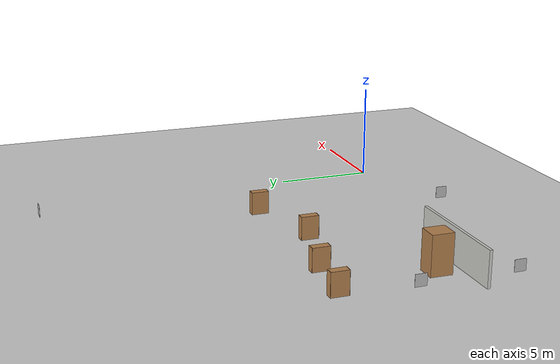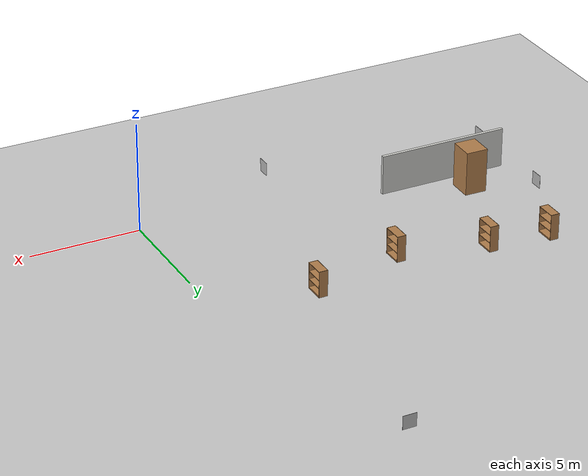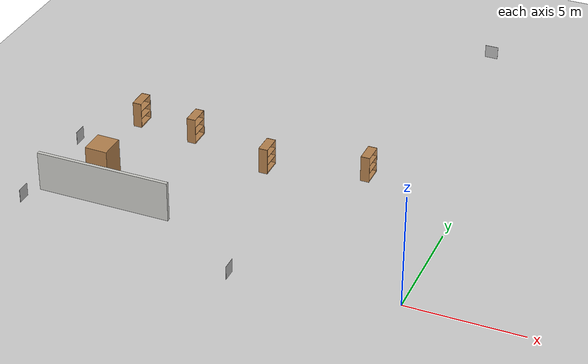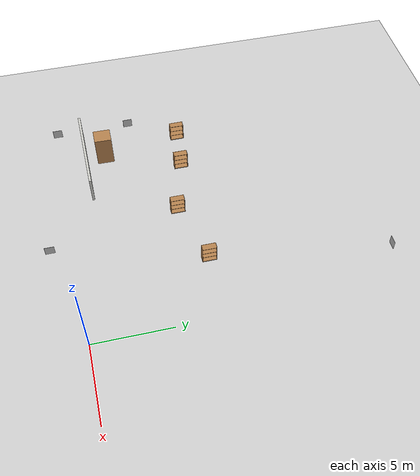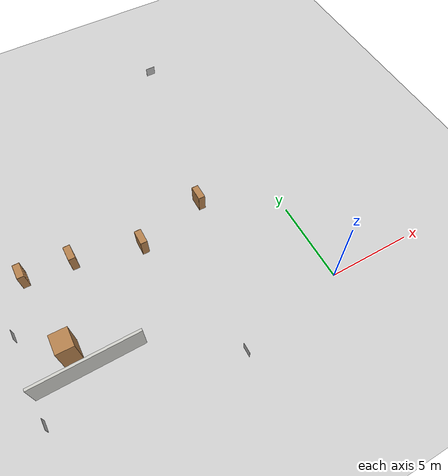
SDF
<sdf version="1.7">
 <world name="default">
  <model name="ground_plane">
   <static>1</static>
   <link name="link">
    <collision name="collision">
     <geometry><plane><normal>0 0 1</normal><size>25 25</size></plane></geometry>
     <surface><friction><ode><mu>100</mu><mu2>50</mu2></ode></friction></surface>
    </collision>
    <visual name="visual">
     <cast_shadows>0</cast_shadows>
     <geometry><plane><normal>0 0 1</normal><size>25 25</size></plane></geometry>
     <material>
      <script><uri>file://media/materials/scripts/gazebo.material</uri><name>Gazebo/Grey</name></script>
     </material>
    </visual>
   </link>
  </model>
  <model name="static_apriltag_1">
   <link name="link">
    <pose>0 0 0 0 1.57 0</pose>
    <inertial>
     <mass>0.39</mass>
     <inertia><ixx>0.00058</ixx><ixy>0</ixy><ixz>0</ixz><iyy>0.00058</iyy><iyz>0</iyz><izz>0.00019</izz></inertia>
    </inertial>
    <collision name="collision"><geometry><box><size>0.6 0.6 0.01</size></box></geometry></collision>
    <visual name="visual">
     <geometry><box><size>0.6 0.6 0.01</size></box></geometry>
     <material>
      <script>
       <uri>model://apriltag/materials/scripts</uri>
       <uri>model://apriltag/materials/textures</uri>
       <name>apriltag/Diffuse1</name>
      </script>
     </material>
    </visual>
    <gravity>0</gravity>
   </link>
   <pose>-2.37496 19.0629 0.800899 0.000796 0.000796 1.57</pose>
   <static>1</static>
   <pose>1.36256 0.459264 0 0 -0 0</pose>
  </model>
  <model name="static_apriltag_2">
   <link name="link">
    <pose>0 0 0 0 1.57 0</pose>
    <inertial>
     <mass>0.39</mass>
     <inertia><ixx>0.00058</ixx><ixy>0</ixy><ixz>0</ixz><iyy>0.00058</iyy><iyz>0</iyz><izz>0.00019</izz></inertia>
    </inertial>
    <collision name="collision"><geometry><box><size>0.6 0.6 0.01</size></box></geometry></collision>
    <visual name="visual">
     <geometry><box><size>0.6 0.6 0.01</size></box></geometry>
     <material>
      <script>
       <uri>model://apriltag/materials/scripts</uri>
       <uri>model://apriltag/materials/textures</uri>
       <name>apriltag/Diffuse2</name>
      </script>
     </material>
    </visual>
    <gravity>0</gravity>
   </link>
   <pose>-16.5929 4.92565 0.800534 -0.000796 0.000796 -1e-06</pose>
   <static>1</static>
   <pose>0.80811 0.829943 0 0 -0 0</pose>
  </model>
  <model name="static_apriltag_3">
   <link name="link">
    <pose>0 0 0 -1.57 1.57 -0</pose>
    <inertial>
     <mass>0.39</mass>
     <inertia><ixx>0.00058</ixx><ixy>0</ixy><ixz>0</ixz><iyy>0.00058</iyy><iyz>0</iyz><izz>0.00019</izz></inertia>
    </inertial>
    <collision name="collision"><geometry><box><size>0.6 0.6 0.01</size></box></geometry></collision>
    <visual name="visual">
     <geometry><box><size>0.6 0.6 0.01</size></box></geometry>
     <material>
      <script>
       <uri>model://apriltag/materials/scripts</uri>
       <uri>model://apriltag/materials/textures</uri>
       <name>apriltag/Diffuse3</name>
      </script>
     </material>
    </visual>
    <gravity>0</gravity>
   </link>
   <pose>-6.59048 -1.46342 0.801382 1e-06 0.001593 1.57319</pose>
   <static>1</static>
   <pose>3.65849 3.02317 0 0 -0 0</pose>
  </model>
  <model name="static_apriltag_7">
   <link name="link">
    <pose>0 0 0 0 1.57 0</pose>
    <inertial>
     <mass>0.39</mass>
     <inertia><ixx>0.00058</ixx><ixy>0</ixy><ixz>0</ixz><iyy>0.00058</iyy><iyz>0</iyz><izz>0.00019</izz></inertia>
    </inertial>
    <collision name="collision"><geometry><box><size>0.6 0.6 0.01</size></box></geometry></collision>
    <visual name="visual">
     <geometry><box><size>0.6 0.6 0.01</size></box></geometry>
     <material>
      <script>
       <uri>model://apriltag/materials/scripts</uri>
       <uri>model://apriltag/materials/textures</uri>
       <name>apriltag/Diffuse7</name>
      </script>
     </material>
    </visual>
    <gravity>0</gravity>
   </link>
   <pose>-16.5926 0.054368 0.800661 -0.000796 0.000796 -1e-06</pose>
   <static>1</static>
   <pose>3.12393 4.47604 0 0 -0 0</pose>
  </model>
  <model name="0810_MAP2_elment2">
   <link name="Wall_0">
    <inertial>
     <mass>1</mass>
     <inertia><ixx>1</ixx><ixy>0</ixy><ixz>0</ixz><iyy>1</iyy><iyz>0</iyz><izz>1</izz></inertia>
    </inertial>
    <visual name="Wall_0_Visual_3">
     <pose>-1 0 0.9 0 -0 0</pose>
     <geometry><box><size>6 0.15 2</size></box></geometry>
     <material>
      <script><uri>file://media/materials/scripts/gazebo.material</uri><name>Gazebo/CeilingTiled</name></script>
      <ambient>1 0.765 0.306 1</ambient>
      <shader type="pixel"><normal_map>__default__</normal_map></shader>
      <diffuse>1 1 1 1</diffuse>
      <specular>0 0 0 1</specular>
      <emissive>0 0 0 1</emissive>
     </material>
     <meta><layer>0</layer></meta>
    </visual>
    <collision name="Wall_0_Collision_3">
     <pose>-1 0 0.9 0 -0 0</pose>
     <geometry><box><size>6 0.15 2</size></box></geometry>
     <surface>
      <friction>
       <ode><mu>1</mu><mu2>1</mu2><fdir1>0 0 0</fdir1><slip1>0</slip1><slip2>0</slip2></ode>
       <torsional>
        <coefficient>1</coefficient>
        <patch_radius>0</patch_radius>
        <surface_radius>0</surface_radius>
        <use_patch_radius>1</use_patch_radius>
        <ode><slip>0</slip></ode>
       </torsional>
      </friction>
      <bounce><restitution_coefficient>0</restitution_coefficient><threshold>1e+06</threshold></bounce>
      <contact>
       <collide_without_contact>0</collide_without_contact>
       <collide_without_contact_bitmask>1</collide_without_contact_bitmask>
       <collide_bitmask>1</collide_bitmask>
       <ode>
        <soft_cfm>0</soft_cfm>
        <soft_erp>0.2</soft_erp>
        <kp>1e+13</kp>
        <kd>1</kd>
        <max_vel>0.01</max_vel>
        <min_depth>0</min_depth>
       </ode>
       <bullet>
        <split_impulse>1</split_impulse>
        <split_impulse_penetration_threshold>-0.01</split_impulse_penetration_threshold>
        <soft_cfm>0</soft_cfm>
        <soft_erp>0.2</soft_erp>
        <kp>1e+13</kp>
        <kd>1</kd>
       </bullet>
      </contact>
     </surface>
    </collision>
   </link>
   <static>1</static>
   <pose>-12.7621 1.68189 -0.102799 0 -0 0</pose>
  </model>
  <model name="bookshelf_clone_0_clone_clone">
   <static>1</static>
   <link name="link">
    <inertial><mass>1</mass></inertial>
    <collision name="back">
     <pose>0 0.005 0.6 0 -0 0</pose>
     <geometry><box><size>0.9 0.01 1.2</size></box></geometry>
    </collision>
    <visual name="visual1">
     <pose>0 0.005 0.6 0 -0 0</pose>
     <geometry><box><size>0.9 0.01 1.2</size></box></geometry>
     <material>
      <script><uri>file://media/materials/scripts/gazebo.material</uri><name>Gazebo/Wood</name></script>
     </material>
    </visual>
    <collision name="left_side">
     <pose>0.45 -0.195 0.6 0 -0 0</pose>
     <geometry><box><size>0.02 0.4 1.2</size></box></geometry>
    </collision>
    <visual name="visual2">
     <pose>0.45 -0.195 0.6 0 -0 0</pose>
     <geometry><box><size>0.02 0.4 1.2</size></box></geometry>
     <material>
      <script><uri>file://media/materials/scripts/gazebo.material</uri><name>Gazebo/Wood</name></script>
     </material>
    </visual>
    <collision name="right_side">
     <pose>-0.45 -0.195 0.6 0 -0 0</pose>
     <geometry><box><size>0.02 0.4 1.2</size></box></geometry>
    </collision>
    <visual name="visual3">
     <pose>-0.45 -0.195 0.6 0 -0 0</pose>
     <geometry><box><size>0.02 0.4 1.2</size></box></geometry>
     <material>
      <script><uri>file://media/materials/scripts/gazebo.material</uri><name>Gazebo/Wood</name></script>
     </material>
    </visual>
    <collision name="bottom">
     <pose>0 -0.195 0.03 0 -0 0</pose>
     <geometry><box><size>0.88 0.4 0.06</size></box></geometry>
    </collision>
    <visual name="visual4">
     <pose>0 -0.195 0.03 0 -0 0</pose>
     <geometry><box><size>0.88 0.4 0.06</size></box></geometry>
     <material>
      <script><uri>file://media/materials/scripts/gazebo.material</uri><name>Gazebo/Wood</name></script>
     </material>
    </visual>
    <collision name="top">
     <pose>0 -0.195 1.19 0 -0 0</pose>
     <geometry><box><size>0.88 0.4 0.02</size></box></geometry>
    </collision>
    <visual name="visual5">
     <pose>0 -0.195 1.19 0 -0 0</pose>
     <geometry><box><size>0.88 0.4 0.02</size></box></geometry>
     <material>
      <script><uri>file://media/materials/scripts/gazebo.material</uri><name>Gazebo/Wood</name></script>
     </material>
    </visual>
    <collision name="low_shelf">
     <pose>0 -0.195 0.43 0 -0 0</pose>
     <geometry><box><size>0.88 0.4 0.02</size></box></geometry>
    </collision>
    <visual name="visual6">
     <pose>0 -0.195 0.43 0 -0 0</pose>
     <geometry><box><size>0.88 0.4 0.02</size></box></geometry>
     <material>
      <script><uri>file://media/materials/scripts/gazebo.material</uri><name>Gazebo/Wood</name></script>
     </material>
    </visual>
    <collision name="high_shelf">
     <pose>0 -0.195 0.8 0 -0 0</pose>
     <geometry><box><size>0.88 0.4 0.02</size></box></geometry>
    </collision>
    <visual name="visual7">
     <pose>0 -0.195 0.8 0 -0 0</pose>
     <geometry><box><size>0.88 0.4 0.02</size></box></geometry>
     <material>
      <script><uri>file://media/materials/scripts/gazebo.material</uri><name>Gazebo/Wood</name></script>
     </material>
    </visual>
   </link>
   <pose>-15.4258 8.15254 0 0 -0 1.57</pose>
  </model>
  <model name="bookshelf_clone_0_clone_clone_clone">
   <static>1</static>
   <link name="link">
    <inertial><mass>1</mass></inertial>
    <collision name="back">
     <pose>0 0.005 0.6 0 -0 0</pose>
     <geometry><box><size>0.9 0.01 1.2</size></box></geometry>
    </collision>
    <visual name="visual1">
     <pose>0 0.005 0.6 0 -0 0</pose>
     <geometry><box><size>0.9 0.01 1.2</size></box></geometry>
     <material>
      <script><uri>file://media/materials/scripts/gazebo.material</uri><name>Gazebo/Wood</name></script>
     </material>
    </visual>
    <collision name="left_side">
     <pose>0.45 -0.195 0.6 0 -0 0</pose>
     <geometry><box><size>0.02 0.4 1.2</size></box></geometry>
    </collision>
    <visual name="visual2">
     <pose>0.45 -0.195 0.6 0 -0 0</pose>
     <geometry><box><size>0.02 0.4 1.2</size></box></geometry>
     <material>
      <script><uri>file://media/materials/scripts/gazebo.material</uri><name>Gazebo/Wood</name></script>
     </material>
    </visual>
    <collision name="right_side">
     <pose>-0.45 -0.195 0.6 0 -0 0</pose>
     <geometry><box><size>0.02 0.4 1.2</size></box></geometry>
    </collision>
    <visual name="visual3">
     <pose>-0.45 -0.195 0.6 0 -0 0</pose>
     <geometry><box><size>0.02 0.4 1.2</size></box></geometry>
     <material>
      <script><uri>file://media/materials/scripts/gazebo.material</uri><name>Gazebo/Wood</name></script>
     </material>
    </visual>
    <collision name="bottom">
     <pose>0 -0.195 0.03 0 -0 0</pose>
     <geometry><box><size>0.88 0.4 0.06</size></box></geometry>
    </collision>
    <visual name="visual4">
     <pose>0 -0.195 0.03 0 -0 0</pose>
     <geometry><box><size>0.88 0.4 0.06</size></box></geometry>
     <material>
      <script><uri>file://media/materials/scripts/gazebo.material</uri><name>Gazebo/Wood</name></script>
     </material>
    </visual>
    <collision name="top">
     <pose>0 -0.195 1.19 0 -0 0</pose>
     <geometry><box><size>0.88 0.4 0.02</size></box></geometry>
    </collision>
    <visual name="visual5">
     <pose>0 -0.195 1.19 0 -0 0</pose>
     <geometry><box><size>0.88 0.4 0.02</size></box></geometry>
     <material>
      <script><uri>file://media/materials/scripts/gazebo.material</uri><name>Gazebo/Wood</name></script>
     </material>
    </visual>
    <collision name="low_shelf">
     <pose>0 -0.195 0.43 0 -0 0</pose>
     <geometry><box><size>0.88 0.4 0.02</size></box></geometry>
    </collision>
    <visual name="visual6">
     <pose>0 -0.195 0.43 0 -0 0</pose>
     <geometry><box><size>0.88 0.4 0.02</size></box></geometry>
     <material>
      <script><uri>file://media/materials/scripts/gazebo.material</uri><name>Gazebo/Wood</name></script>
     </material>
    </visual>
    <collision name="high_shelf">
     <pose>0 -0.195 0.8 0 -0 0</pose>
     <geometry><box><size>0.88 0.4 0.02</size></box></geometry>
    </collision>
    <visual name="visual7">
     <pose>0 -0.195 0.8 0 -0 0</pose>
     <geometry><box><size>0.88 0.4 0.02</size></box></geometry>
     <material>
      <script><uri>file://media/materials/scripts/gazebo.material</uri><name>Gazebo/Wood</name></script>
     </material>
    </visual>
   </link>
   <pose>-12.6432 7.87454 0 0 -0 1.57</pose>
  </model>
  <model name="unit_box_clone">
   <pose>-14.42 2.98026 1.01795 -4e-06 -2e-06 -0.018469</pose>
   <link name="link">
    <inertial>
     <mass>1</mass>
     <inertia>
      <ixx>0.166667</ixx>
      <ixy>0</ixy>
      <ixz>0</ixz>
      <iyy>0.166667</iyy>
      <iyz>0</iyz>
      <izz>0.166667</izz>
     </inertia>
    </inertial>
    <collision name="collision"><geometry><box><size>1 1.11313 2.03591</size></box></geometry></collision>
    <visual name="visual">
     <geometry><box><size>1 1.11313 2.03591</size></box></geometry>
     <material>
      <script><uri>file://media/materials/scripts/gazebo.material</uri><name>Gazebo/Wood</name></script>
     </material>
    </visual>
   </link>
   <static>0</static>
  </model>
  <model name="bookshelf_clone_0_clone_clone_clone_clone">
   <static>1</static>
   <link name="link">
    <inertial><mass>1</mass></inertial>
    <collision name="back">
     <pose>0 0.005 0.6 0 -0 0</pose>
     <geometry><box><size>0.9 0.01 1.2</size></box></geometry>
    </collision>
    <visual name="visual1">
     <pose>0 0.005 0.6 0 -0 0</pose>
     <geometry><box><size>0.9 0.01 1.2</size></box></geometry>
     <material>
      <script><uri>file://media/materials/scripts/gazebo.material</uri><name>Gazebo/Wood</name></script>
     </material>
    </visual>
    <collision name="left_side">
     <pose>0.45 -0.195 0.6 0 -0 0</pose>
     <geometry><box><size>0.02 0.4 1.2</size></box></geometry>
    </collision>
    <visual name="visual2">
     <pose>0.45 -0.195 0.6 0 -0 0</pose>
     <geometry><box><size>0.02 0.4 1.2</size></box></geometry>
     <material>
      <script><uri>file://media/materials/scripts/gazebo.material</uri><name>Gazebo/Wood</name></script>
     </material>
    </visual>
    <collision name="right_side">
     <pose>-0.45 -0.195 0.6 0 -0 0</pose>
     <geometry><box><size>0.02 0.4 1.2</size></box></geometry>
    </collision>
    <visual name="visual3">
     <pose>-0.45 -0.195 0.6 0 -0 0</pose>
     <geometry><box><size>0.02 0.4 1.2</size></box></geometry>
     <material>
      <script><uri>file://media/materials/scripts/gazebo.material</uri><name>Gazebo/Wood</name></script>
     </material>
    </visual>
    <collision name="bottom">
     <pose>0 -0.195 0.03 0 -0 0</pose>
     <geometry><box><size>0.88 0.4 0.06</size></box></geometry>
    </collision>
    <visual name="visual4">
     <pose>0 -0.195 0.03 0 -0 0</pose>
     <geometry><box><size>0.88 0.4 0.06</size></box></geometry>
     <material>
      <script><uri>file://media/materials/scripts/gazebo.material</uri><name>Gazebo/Wood</name></script>
     </material>
    </visual>
    <collision name="top">
     <pose>0 -0.195 1.19 0 -0 0</pose>
     <geometry><box><size>0.88 0.4 0.02</size></box></geometry>
    </collision>
    <visual name="visual5">
     <pose>0 -0.195 1.19 0 -0 0</pose>
     <geometry><box><size>0.88 0.4 0.02</size></box></geometry>
     <material>
      <script><uri>file://media/materials/scripts/gazebo.material</uri><name>Gazebo/Wood</name></script>
     </material>
    </visual>
    <collision name="low_shelf">
     <pose>0 -0.195 0.43 0 -0 0</pose>
     <geometry><box><size>0.88 0.4 0.02</size></box></geometry>
    </collision>
    <visual name="visual6">
     <pose>0 -0.195 0.43 0 -0 0</pose>
     <geometry><box><size>0.88 0.4 0.02</size></box></geometry>
     <material>
      <script><uri>file://media/materials/scripts/gazebo.material</uri><name>Gazebo/Wood</name></script>
     </material>
    </visual>
    <collision name="high_shelf">
     <pose>0 -0.195 0.8 0 -0 0</pose>
     <geometry><box><size>0.88 0.4 0.02</size></box></geometry>
    </collision>
    <visual name="visual7">
     <pose>0 -0.195 0.8 0 -0 0</pose>
     <geometry><box><size>0.88 0.4 0.02</size></box></geometry>
     <material>
      <script><uri>file://media/materials/scripts/gazebo.material</uri><name>Gazebo/Wood</name></script>
     </material>
    </visual>
   </link>
   <pose>-8.78011 6.87471 0 0 -0 1.57</pose>
  </model>
  <model name="bookshelf_clone_0_clone_clone_clone_clone_clone">
   <static>1</static>
   <link name="link">
    <inertial><mass>1</mass></inertial>
    <collision name="back">
     <pose>0 0.005 0.6 0 -0 0</pose>
     <geometry><box><size>0.9 0.01 1.2</size></box></geometry>
    </collision>
    <visual name="visual1">
     <pose>0 0.005 0.6 0 -0 0</pose>
     <geometry><box><size>0.9 0.01 1.2</size></box></geometry>
     <material>
      <script><uri>file://media/materials/scripts/gazebo.material</uri><name>Gazebo/Wood</name></script>
     </material>
    </visual>
    <collision name="left_side">
     <pose>0.45 -0.195 0.6 0 -0 0</pose>
     <geometry><box><size>0.02 0.4 1.2</size></box></geometry>
    </collision>
    <visual name="visual2">
     <pose>0.45 -0.195 0.6 0 -0 0</pose>
     <geometry><box><size>0.02 0.4 1.2</size></box></geometry>
     <material>
      <script><uri>file://media/materials/scripts/gazebo.material</uri><name>Gazebo/Wood</name></script>
     </material>
    </visual>
    <collision name="right_side">
     <pose>-0.45 -0.195 0.6 0 -0 0</pose>
     <geometry><box><size>0.02 0.4 1.2</size></box></geometry>
    </collision>
    <visual name="visual3">
     <pose>-0.45 -0.195 0.6 0 -0 0</pose>
     <geometry><box><size>0.02 0.4 1.2</size></box></geometry>
     <material>
      <script><uri>file://media/materials/scripts/gazebo.material</uri><name>Gazebo/Wood</name></script>
     </material>
    </visual>
    <collision name="bottom">
     <pose>0 -0.195 0.03 0 -0 0</pose>
     <geometry><box><size>0.88 0.4 0.06</size></box></geometry>
    </collision>
    <visual name="visual4">
     <pose>0 -0.195 0.03 0 -0 0</pose>
     <geometry><box><size>0.88 0.4 0.06</size></box></geometry>
     <material>
      <script><uri>file://media/materials/scripts/gazebo.material</uri><name>Gazebo/Wood</name></script>
     </material>
    </visual>
    <collision name="top">
     <pose>0 -0.195 1.19 0 -0 0</pose>
     <geometry><box><size>0.88 0.4 0.02</size></box></geometry>
    </collision>
    <visual name="visual5">
     <pose>0 -0.195 1.19 0 -0 0</pose>
     <geometry><box><size>0.88 0.4 0.02</size></box></geometry>
     <material>
      <script><uri>file://media/materials/scripts/gazebo.material</uri><name>Gazebo/Wood</name></script>
     </material>
    </visual>
    <collision name="low_shelf">
     <pose>0 -0.195 0.43 0 -0 0</pose>
     <geometry><box><size>0.88 0.4 0.02</size></box></geometry>
    </collision>
    <visual name="visual6">
     <pose>0 -0.195 0.43 0 -0 0</pose>
     <geometry><box><size>0.88 0.4 0.02</size></box></geometry>
     <material>
      <script><uri>file://media/materials/scripts/gazebo.material</uri><name>Gazebo/Wood</name></script>
     </material>
    </visual>
    <collision name="high_shelf">
     <pose>0 -0.195 0.8 0 -0 0</pose>
     <geometry><box><size>0.88 0.4 0.02</size></box></geometry>
    </collision>
    <visual name="visual7">
     <pose>0 -0.195 0.8 0 -0 0</pose>
     <geometry><box><size>0.88 0.4 0.02</size></box></geometry>
     <material>
      <script><uri>file://media/materials/scripts/gazebo.material</uri><name>Gazebo/Wood</name></script>
     </material>
    </visual>
   </link>
   <pose>-4.55585 7.98164 0 0 -0 1.57</pose>
  </model>
 </world>
</sdf>
